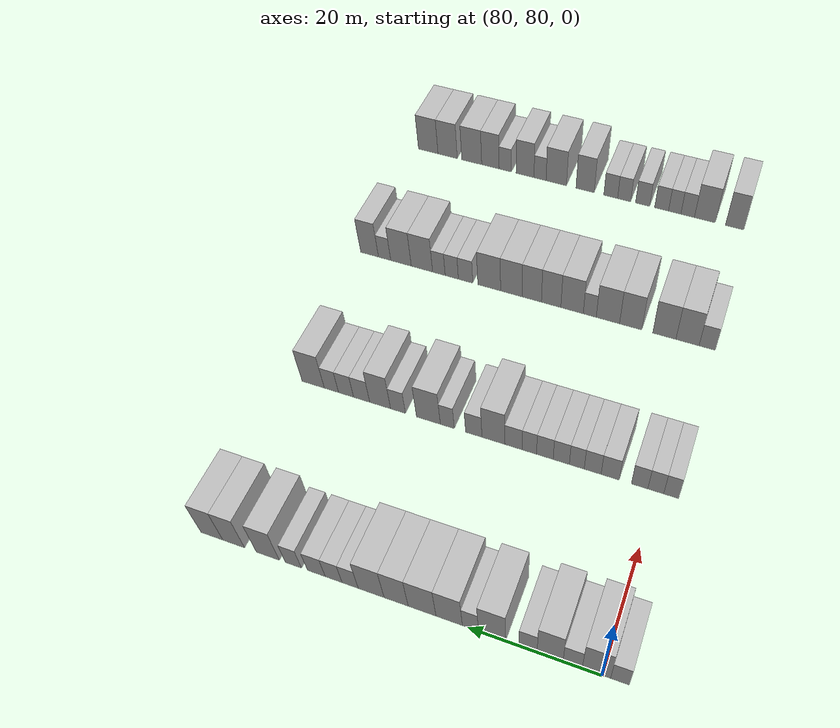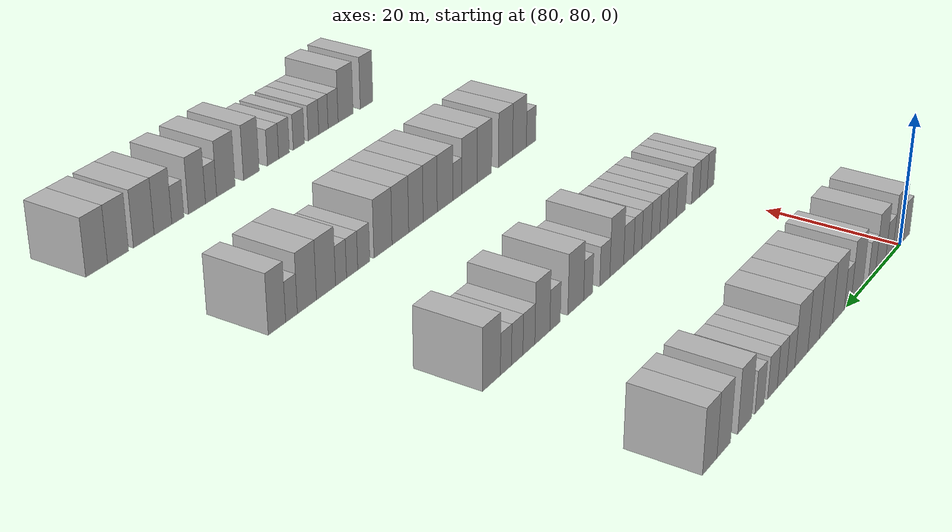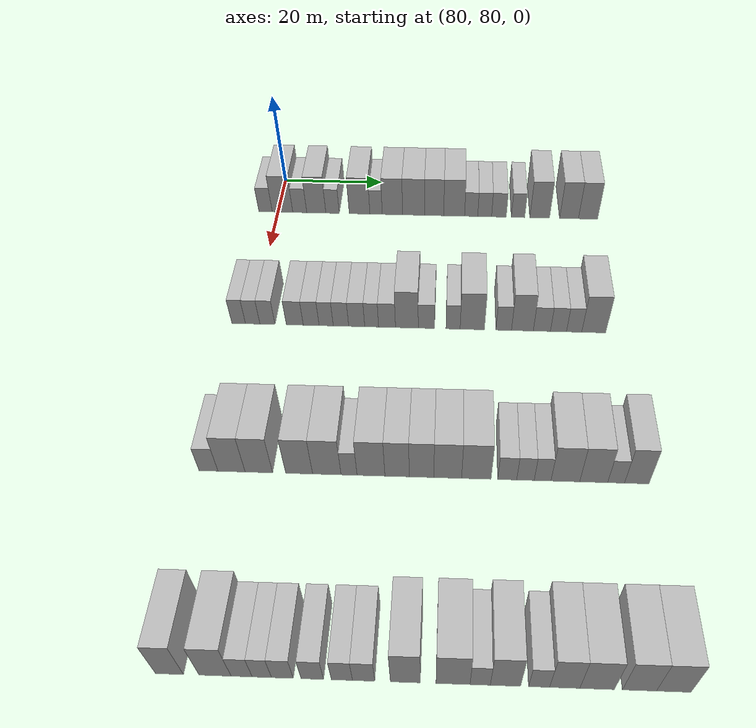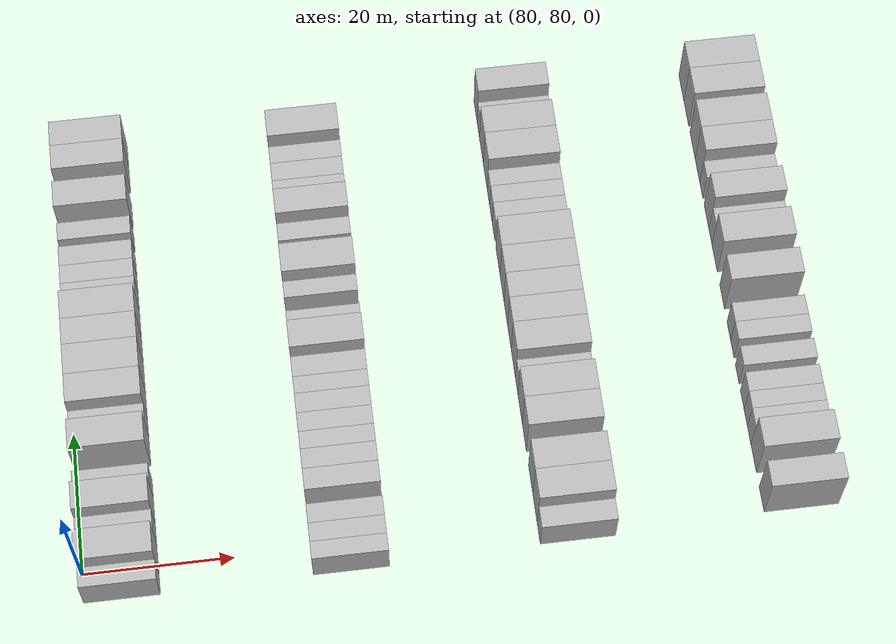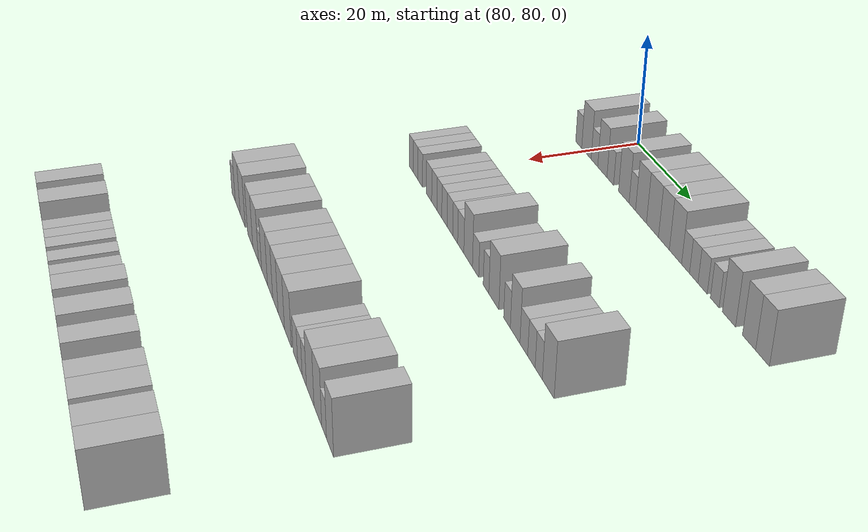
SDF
<sdf version="1.6">
 <world name="default">
  <model name="building_589">
   <static>1</static>
   <pose>85.0000 77.4584 0 0.000000 0.000000 0.000000</pose>
   <link name="link">
    <pose>0 0 3.00 0 0 0</pose>
    <collision name="collision"><geometry><box><size>10.0000 2.6896 6.0000</size></box></geometry></collision>
    <visual name="visual">
     <cast_shadows>0</cast_shadows>
     <geometry><box><size>10.0000 2.6896 6.0000</size></box></geometry>
     <material>
      <script>
       <uri>model://HANNAS_wall/materials/scripts</uri>
       <uri>model://HANNAS_wall/materials/textures</uri>
       <name>vrc/HANNAS_wall</name>
      </script>
     </material>
    </visual>
   </link>
  </model>
  <model name="building_590">
   <static>1</static>
   <pose>85.0000 80.8638 0 0.000000 0.000000 0.000000</pose>
   <link name="link">
    <pose>0 0 4.50 0 0 0</pose>
    <collision name="collision"><geometry><box><size>10.0000 4.1212 9.0000</size></box></geometry></collision>
    <visual name="visual">
     <cast_shadows>0</cast_shadows>
     <geometry><box><size>10.0000 4.1212 9.0000</size></box></geometry>
     <material>
      <script>
       <uri>model://HANNAS_wall/materials/scripts</uri>
       <uri>model://HANNAS_wall/materials/textures</uri>
       <name>vrc/HANNAS_wall</name>
      </script>
     </material>
    </visual>
   </link>
  </model>
  <model name="building_591">
   <static>1</static>
   <pose>85.0000 84.3279 0 0.000000 0.000000 0.000000</pose>
   <link name="link">
    <pose>0 0 3.00 0 0 0</pose>
    <collision name="collision"><geometry><box><size>10.0000 2.8071 6.0000</size></box></geometry></collision>
    <visual name="visual">
     <cast_shadows>0</cast_shadows>
     <geometry><box><size>10.0000 2.8071 6.0000</size></box></geometry>
     <material>
      <script>
       <uri>model://HANNAS_wall/materials/scripts</uri>
       <uri>model://HANNAS_wall/materials/textures</uri>
       <name>vrc/HANNAS_wall</name>
      </script>
     </material>
    </visual>
   </link>
  </model>
  <model name="building_592">
   <static>1</static>
   <pose>85.0000 87.6487 0 0.000000 0.000000 0.000000</pose>
   <link name="link">
    <pose>0 0 4.50 0 0 0</pose>
    <collision name="collision"><geometry><box><size>10.0000 3.8343 9.0000</size></box></geometry></collision>
    <visual name="visual">
     <cast_shadows>0</cast_shadows>
     <geometry><box><size>10.0000 3.8343 9.0000</size></box></geometry>
     <material>
      <script>
       <uri>model://HANNAS_wall/materials/scripts</uri>
       <uri>model://HANNAS_wall/materials/textures</uri>
       <name>vrc/HANNAS_wall</name>
      </script>
     </material>
    </visual>
   </link>
  </model>
  <model name="building_593">
   <static>1</static>
   <pose>85.0000 90.9159 0 0.000000 0.000000 0.000000</pose>
   <link name="link">
    <pose>0 0 3.00 0 0 0</pose>
    <collision name="collision"><geometry><box><size>10.0000 2.7001 6.0000</size></box></geometry></collision>
    <visual name="visual">
     <cast_shadows>0</cast_shadows>
     <geometry><box><size>10.0000 2.7001 6.0000</size></box></geometry>
     <material>
      <script>
       <uri>model://HANNAS_wall/materials/scripts</uri>
       <uri>model://HANNAS_wall/materials/textures</uri>
       <name>vrc/HANNAS_wall</name>
      </script>
     </material>
    </visual>
   </link>
  </model>
  <model name="building_594">
   <static>1</static>
   <pose>85.0000 96.3333 0 0.000000 0.000000 0.000000</pose>
   <link name="link">
    <pose>0 0 4.50 0 0 0</pose>
    <collision name="collision"><geometry><box><size>10.0000 4.1349 9.0000</size></box></geometry></collision>
    <visual name="visual">
     <cast_shadows>0</cast_shadows>
     <geometry><box><size>10.0000 4.1349 9.0000</size></box></geometry>
     <material>
      <script>
       <uri>model://HANNAS_wall/materials/scripts</uri>
       <uri>model://HANNAS_wall/materials/textures</uri>
       <name>vrc/HANNAS_wall</name>
      </script>
     </material>
    </visual>
   </link>
  </model>
  <model name="building_595">
   <static>1</static>
   <pose>85.0000 99.6368 0 0.000000 0.000000 0.000000</pose>
   <link name="link">
    <pose>0 0 3.00 0 0 0</pose>
    <collision name="collision"><geometry><box><size>10.0000 2.4721 6.0000</size></box></geometry></collision>
    <visual name="visual">
     <cast_shadows>0</cast_shadows>
     <geometry><box><size>10.0000 2.4721 6.0000</size></box></geometry>
     <material>
      <script>
       <uri>model://HANNAS_wall/materials/scripts</uri>
       <uri>model://HANNAS_wall/materials/textures</uri>
       <name>vrc/HANNAS_wall</name>
      </script>
     </material>
    </visual>
   </link>
  </model>
  <model name="building_596">
   <static>1</static>
   <pose>85.0000 102.9120 0 0.000000 0.000000 0.000000</pose>
   <link name="link">
    <pose>0 0 4.50 0 0 0</pose>
    <collision name="collision"><geometry><box><size>10.0000 4.0782 9.0000</size></box></geometry></collision>
    <visual name="visual">
     <cast_shadows>0</cast_shadows>
     <geometry><box><size>10.0000 4.0782 9.0000</size></box></geometry>
     <material>
      <script>
       <uri>model://HANNAS_wall/materials/scripts</uri>
       <uri>model://HANNAS_wall/materials/textures</uri>
       <name>vrc/HANNAS_wall</name>
      </script>
     </material>
    </visual>
   </link>
  </model>
  <model name="building_597">
   <static>1</static>
   <pose>85.0000 107.1303 0 0.000000 0.000000 0.000000</pose>
   <link name="link">
    <pose>0 0 4.50 0 0 0</pose>
    <collision name="collision"><geometry><box><size>10.0000 4.3585 9.0000</size></box></geometry></collision>
    <visual name="visual">
     <cast_shadows>0</cast_shadows>
     <geometry><box><size>10.0000 4.3585 9.0000</size></box></geometry>
     <material>
      <script>
       <uri>model://HANNAS_wall/materials/scripts</uri>
       <uri>model://HANNAS_wall/materials/textures</uri>
       <name>vrc/HANNAS_wall</name>
      </script>
     </material>
    </visual>
   </link>
  </model>
  <model name="building_598">
   <static>1</static>
   <pose>85.0000 111.2262 0 0.000000 0.000000 0.000000</pose>
   <link name="link">
    <pose>0 0 4.50 0 0 0</pose>
    <collision name="collision"><geometry><box><size>10.0000 3.8331 9.0000</size></box></geometry></collision>
    <visual name="visual">
     <cast_shadows>0</cast_shadows>
     <geometry><box><size>10.0000 3.8331 9.0000</size></box></geometry>
     <material>
      <script>
       <uri>model://HANNAS_wall/materials/scripts</uri>
       <uri>model://HANNAS_wall/materials/textures</uri>
       <name>vrc/HANNAS_wall</name>
      </script>
     </material>
    </visual>
   </link>
  </model>
  <model name="building_599">
   <static>1</static>
   <pose>85.0000 115.2200 0 0.000000 0.000000 0.000000</pose>
   <link name="link">
    <pose>0 0 4.50 0 0 0</pose>
    <collision name="collision"><geometry><box><size>10.0000 4.1546 9.0000</size></box></geometry></collision>
    <visual name="visual">
     <cast_shadows>0</cast_shadows>
     <geometry><box><size>10.0000 4.1546 9.0000</size></box></geometry>
     <material>
      <script>
       <uri>model://HANNAS_wall/materials/scripts</uri>
       <uri>model://HANNAS_wall/materials/textures</uri>
       <name>vrc/HANNAS_wall</name>
      </script>
     </material>
    </visual>
   </link>
  </model>
  <model name="building_600">
   <static>1</static>
   <pose>85.0000 118.6064 0 0.000000 0.000000 0.000000</pose>
   <link name="link">
    <pose>0 0 3.00 0 0 0</pose>
    <collision name="collision"><geometry><box><size>10.0000 2.6182 6.0000</size></box></geometry></collision>
    <visual name="visual">
     <cast_shadows>0</cast_shadows>
     <geometry><box><size>10.0000 2.6182 6.0000</size></box></geometry>
     <material>
      <script>
       <uri>model://HANNAS_wall/materials/scripts</uri>
       <uri>model://HANNAS_wall/materials/textures</uri>
       <name>vrc/HANNAS_wall</name>
      </script>
     </material>
    </visual>
   </link>
  </model>
  <model name="building_601">
   <static>1</static>
   <pose>85.0000 121.2930 0 0.000000 0.000000 0.000000</pose>
   <link name="link">
    <pose>0 0 3.00 0 0 0</pose>
    <collision name="collision"><geometry><box><size>10.0000 2.7549 6.0000</size></box></geometry></collision>
    <visual name="visual">
     <cast_shadows>0</cast_shadows>
     <geometry><box><size>10.0000 2.7549 6.0000</size></box></geometry>
     <material>
      <script>
       <uri>model://HANNAS_wall/materials/scripts</uri>
       <uri>model://HANNAS_wall/materials/textures</uri>
       <name>vrc/HANNAS_wall</name>
      </script>
     </material>
    </visual>
   </link>
  </model>
  <model name="building_602">
   <static>1</static>
   <pose>85.0000 124.1350 0 0.000000 0.000000 0.000000</pose>
   <link name="link">
    <pose>0 0 3.00 0 0 0</pose>
    <collision name="collision"><geometry><box><size>10.0000 2.9290 6.0000</size></box></geometry></collision>
    <visual name="visual">
     <cast_shadows>0</cast_shadows>
     <geometry><box><size>10.0000 2.9290 6.0000</size></box></geometry>
     <material>
      <script>
       <uri>model://HANNAS_wall/materials/scripts</uri>
       <uri>model://HANNAS_wall/materials/textures</uri>
       <name>vrc/HANNAS_wall</name>
      </script>
     </material>
    </visual>
   </link>
  </model>
  <model name="building_603">
   <static>1</static>
   <pose>85.0000 127.9383 0 0.000000 0.000000 0.000000</pose>
   <link name="link">
    <pose>0 0 3.00 0 0 0</pose>
    <collision name="collision"><geometry><box><size>10.0000 2.6775 6.0000</size></box></geometry></collision>
    <visual name="visual">
     <cast_shadows>0</cast_shadows>
     <geometry><box><size>10.0000 2.6775 6.0000</size></box></geometry>
     <material>
      <script>
       <uri>model://HANNAS_wall/materials/scripts</uri>
       <uri>model://HANNAS_wall/materials/textures</uri>
       <name>vrc/HANNAS_wall</name>
      </script>
     </material>
    </visual>
   </link>
  </model>
  <model name="building_604">
   <static>1</static>
   <pose>85.0000 132.2350 0 0.000000 0.000000 0.000000</pose>
   <link name="link">
    <pose>0 0 4.50 0 0 0</pose>
    <collision name="collision"><geometry><box><size>10.0000 3.9159 9.0000</size></box></geometry></collision>
    <visual name="visual">
     <cast_shadows>0</cast_shadows>
     <geometry><box><size>10.0000 3.9159 9.0000</size></box></geometry>
     <material>
      <script>
       <uri>model://HANNAS_wall/materials/scripts</uri>
       <uri>model://HANNAS_wall/materials/textures</uri>
       <name>vrc/HANNAS_wall</name>
      </script>
     </material>
    </visual>
   </link>
  </model>
  <model name="building_605">
   <static>1</static>
   <pose>85.0000 138.0559 0 0.000000 0.000000 0.000000</pose>
   <link name="link">
    <pose>0 0 4.50 0 0 0</pose>
    <collision name="collision"><geometry><box><size>10.0000 3.7260 9.0000</size></box></geometry></collision>
    <visual name="visual">
     <cast_shadows>0</cast_shadows>
     <geometry><box><size>10.0000 3.7260 9.0000</size></box></geometry>
     <material>
      <script>
       <uri>model://HANNAS_wall/materials/scripts</uri>
       <uri>model://HANNAS_wall/materials/textures</uri>
       <name>vrc/HANNAS_wall</name>
      </script>
     </material>
    </visual>
   </link>
  </model>
  <model name="building_606">
   <static>1</static>
   <pose>85.0000 141.8141 0 0.000000 0.000000 0.000000</pose>
   <link name="link">
    <pose>0 0 4.50 0 0 0</pose>
    <collision name="collision"><geometry><box><size>10.0000 3.7904 9.0000</size></box></geometry></collision>
    <visual name="visual">
     <cast_shadows>0</cast_shadows>
     <geometry><box><size>10.0000 3.7904 9.0000</size></box></geometry>
     <material>
      <script>
       <uri>model://HANNAS_wall/materials/scripts</uri>
       <uri>model://HANNAS_wall/materials/textures</uri>
       <name>vrc/HANNAS_wall</name>
      </script>
     </material>
    </visual>
   </link>
  </model>
  <model name="building_812">
   <static>1</static>
   <pose>115.0000 77.5867 0 0.000000 0.000000 0.000000</pose>
   <link name="link">
    <pose>0 0 3.00 0 0 0</pose>
    <collision name="collision"><geometry><box><size>10.0000 2.4050 6.0000</size></box></geometry></collision>
    <visual name="visual">
     <cast_shadows>0</cast_shadows>
     <geometry><box><size>10.0000 2.4050 6.0000</size></box></geometry>
     <material>
      <script>
       <uri>model://HANNAS_wall/materials/scripts</uri>
       <uri>model://HANNAS_wall/materials/textures</uri>
       <name>vrc/HANNAS_wall</name>
      </script>
     </material>
    </visual>
   </link>
  </model>
  <model name="building_813">
   <static>1</static>
   <pose>115.0000 80.0683 0 0.000000 0.000000 0.000000</pose>
   <link name="link">
    <pose>0 0 3.00 0 0 0</pose>
    <collision name="collision"><geometry><box><size>10.0000 2.5582 6.0000</size></box></geometry></collision>
    <visual name="visual">
     <cast_shadows>0</cast_shadows>
     <geometry><box><size>10.0000 2.5582 6.0000</size></box></geometry>
     <material>
      <script>
       <uri>model://HANNAS_wall/materials/scripts</uri>
       <uri>model://HANNAS_wall/materials/textures</uri>
       <name>vrc/HANNAS_wall</name>
      </script>
     </material>
    </visual>
   </link>
  </model>
  <model name="building_814">
   <static>1</static>
   <pose>115.0000 82.6813 0 0.000000 0.000000 0.000000</pose>
   <link name="link">
    <pose>0 0 3.00 0 0 0</pose>
    <collision name="collision"><geometry><box><size>10.0000 2.6678 6.0000</size></box></geometry></collision>
    <visual name="visual">
     <cast_shadows>0</cast_shadows>
     <geometry><box><size>10.0000 2.6678 6.0000</size></box></geometry>
     <material>
      <script>
       <uri>model://HANNAS_wall/materials/scripts</uri>
       <uri>model://HANNAS_wall/materials/textures</uri>
       <name>vrc/HANNAS_wall</name>
      </script>
     </material>
    </visual>
   </link>
  </model>
  <model name="building_815">
   <static>1</static>
   <pose>115.0000 87.5109 0 0.000000 0.000000 0.000000</pose>
   <link name="link">
    <pose>0 0 3.00 0 0 0</pose>
    <collision name="collision"><geometry><box><size>10.0000 2.9914 6.0000</size></box></geometry></collision>
    <visual name="visual">
     <cast_shadows>0</cast_shadows>
     <geometry><box><size>10.0000 2.9914 6.0000</size></box></geometry>
     <material>
      <script>
       <uri>model://HANNAS_wall/materials/scripts</uri>
       <uri>model://HANNAS_wall/materials/textures</uri>
       <name>vrc/HANNAS_wall</name>
      </script>
     </material>
    </visual>
   </link>
  </model>
  <model name="building_816">
   <static>1</static>
   <pose>115.0000 90.4049 0 0.000000 0.000000 0.000000</pose>
   <link name="link">
    <pose>0 0 3.00 0 0 0</pose>
    <collision name="collision"><geometry><box><size>10.0000 2.7964 6.0000</size></box></geometry></collision>
    <visual name="visual">
     <cast_shadows>0</cast_shadows>
     <geometry><box><size>10.0000 2.7964 6.0000</size></box></geometry>
     <material>
      <script>
       <uri>model://HANNAS_wall/materials/scripts</uri>
       <uri>model://HANNAS_wall/materials/textures</uri>
       <name>vrc/HANNAS_wall</name>
      </script>
     </material>
    </visual>
   </link>
  </model>
  <model name="building_817">
   <static>1</static>
   <pose>115.0000 93.0506 0 0.000000 0.000000 0.000000</pose>
   <link name="link">
    <pose>0 0 3.00 0 0 0</pose>
    <collision name="collision"><geometry><box><size>10.0000 2.4950 6.0000</size></box></geometry></collision>
    <visual name="visual">
     <cast_shadows>0</cast_shadows>
     <geometry><box><size>10.0000 2.4950 6.0000</size></box></geometry>
     <material>
      <script>
       <uri>model://HANNAS_wall/materials/scripts</uri>
       <uri>model://HANNAS_wall/materials/textures</uri>
       <name>vrc/HANNAS_wall</name>
      </script>
     </material>
    </visual>
   </link>
  </model>
  <model name="building_818">
   <static>1</static>
   <pose>115.0000 95.6571 0 0.000000 0.000000 0.000000</pose>
   <link name="link">
    <pose>0 0 3.00 0 0 0</pose>
    <collision name="collision"><geometry><box><size>10.0000 2.7181 6.0000</size></box></geometry></collision>
    <visual name="visual">
     <cast_shadows>0</cast_shadows>
     <geometry><box><size>10.0000 2.7181 6.0000</size></box></geometry>
     <material>
      <script>
       <uri>model://HANNAS_wall/materials/scripts</uri>
       <uri>model://HANNAS_wall/materials/textures</uri>
       <name>vrc/HANNAS_wall</name>
      </script>
     </material>
    </visual>
   </link>
  </model>
  <model name="building_819">
   <static>1</static>
   <pose>115.0000 98.4262 0 0.000000 0.000000 0.000000</pose>
   <link name="link">
    <pose>0 0 3.00 0 0 0</pose>
    <collision name="collision"><geometry><box><size>10.0000 2.8200 6.0000</size></box></geometry></collision>
    <visual name="visual">
     <cast_shadows>0</cast_shadows>
     <geometry><box><size>10.0000 2.8200 6.0000</size></box></geometry>
     <material>
      <script>
       <uri>model://HANNAS_wall/materials/scripts</uri>
       <uri>model://HANNAS_wall/materials/textures</uri>
       <name>vrc/HANNAS_wall</name>
      </script>
     </material>
    </visual>
   </link>
  </model>
  <model name="building_820">
   <static>1</static>
   <pose>115.0000 101.0587 0 0.000000 0.000000 0.000000</pose>
   <link name="link">
    <pose>0 0 3.00 0 0 0</pose>
    <collision name="collision"><geometry><box><size>10.0000 2.4451 6.0000</size></box></geometry></collision>
    <visual name="visual">
     <cast_shadows>0</cast_shadows>
     <geometry><box><size>10.0000 2.4451 6.0000</size></box></geometry>
     <material>
      <script>
       <uri>model://HANNAS_wall/materials/scripts</uri>
       <uri>model://HANNAS_wall/materials/textures</uri>
       <name>vrc/HANNAS_wall</name>
      </script>
     </material>
    </visual>
   </link>
  </model>
  <model name="building_821">
   <static>1</static>
   <pose>115.0000 103.7648 0 0.000000 0.000000 0.000000</pose>
   <link name="link">
    <pose>0 0 3.00 0 0 0</pose>
    <collision name="collision"><geometry><box><size>10.0000 2.9672 6.0000</size></box></geometry></collision>
    <visual name="visual">
     <cast_shadows>0</cast_shadows>
     <geometry><box><size>10.0000 2.9672 6.0000</size></box></geometry>
     <material>
      <script>
       <uri>model://HANNAS_wall/materials/scripts</uri>
       <uri>model://HANNAS_wall/materials/textures</uri>
       <name>vrc/HANNAS_wall</name>
      </script>
     </material>
    </visual>
   </link>
  </model>
  <model name="building_822">
   <static>1</static>
   <pose>115.0000 107.2496 0 0.000000 0.000000 0.000000</pose>
   <link name="link">
    <pose>0 0 4.50 0 0 0</pose>
    <collision name="collision"><geometry><box><size>10.0000 4.0023 9.0000</size></box></geometry></collision>
    <visual name="visual">
     <cast_shadows>0</cast_shadows>
     <geometry><box><size>10.0000 4.0023 9.0000</size></box></geometry>
     <material>
      <script>
       <uri>model://HANNAS_wall/materials/scripts</uri>
       <uri>model://HANNAS_wall/materials/textures</uri>
       <name>vrc/HANNAS_wall</name>
      </script>
     </material>
    </visual>
   </link>
  </model>
  <model name="building_823">
   <static>1</static>
   <pose>115.0000 110.6808 0 0.000000 0.000000 0.000000</pose>
   <link name="link">
    <pose>0 0 3.00 0 0 0</pose>
    <collision name="collision"><geometry><box><size>10.0000 2.8601 6.0000</size></box></geometry></collision>
    <visual name="visual">
     <cast_shadows>0</cast_shadows>
     <geometry><box><size>10.0000 2.8601 6.0000</size></box></geometry>
     <material>
      <script>
       <uri>model://HANNAS_wall/materials/scripts</uri>
       <uri>model://HANNAS_wall/materials/textures</uri>
       <name>vrc/HANNAS_wall</name>
      </script>
     </material>
    </visual>
   </link>
  </model>
  <model name="building_824">
   <static>1</static>
   <pose>115.0000 115.3461 0 0.000000 0.000000 0.000000</pose>
   <link name="link">
    <pose>0 0 3.00 0 0 0</pose>
    <collision name="collision"><geometry><box><size>10.0000 2.4706 6.0000</size></box></geometry></collision>
    <visual name="visual">
     <cast_shadows>0</cast_shadows>
     <geometry><box><size>10.0000 2.4706 6.0000</size></box></geometry>
     <material>
      <script>
       <uri>model://HANNAS_wall/materials/scripts</uri>
       <uri>model://HANNAS_wall/materials/textures</uri>
       <name>vrc/HANNAS_wall</name>
      </script>
     </material>
    </visual>
   </link>
  </model>
  <model name="building_825">
   <static>1</static>
   <pose>115.0000 118.7160 0 0.000000 0.000000 0.000000</pose>
   <link name="link">
    <pose>0 0 4.50 0 0 0</pose>
    <collision name="collision"><geometry><box><size>10.0000 4.2692 9.0000</size></box></geometry></collision>
    <visual name="visual">
     <cast_shadows>0</cast_shadows>
     <geometry><box><size>10.0000 4.2692 9.0000</size></box></geometry>
     <material>
      <script>
       <uri>model://HANNAS_wall/materials/scripts</uri>
       <uri>model://HANNAS_wall/materials/textures</uri>
       <name>vrc/HANNAS_wall</name>
      </script>
     </material>
    </visual>
   </link>
  </model>
  <model name="building_826">
   <static>1</static>
   <pose>115.0000 124.2077 0 0.000000 0.000000 0.000000</pose>
   <link name="link">
    <pose>0 0 3.00 0 0 0</pose>
    <collision name="collision"><geometry><box><size>10.0000 2.7141 6.0000</size></box></geometry></collision>
    <visual name="visual">
     <cast_shadows>0</cast_shadows>
     <geometry><box><size>10.0000 2.7141 6.0000</size></box></geometry>
     <material>
      <script>
       <uri>model://HANNAS_wall/materials/scripts</uri>
       <uri>model://HANNAS_wall/materials/textures</uri>
       <name>vrc/HANNAS_wall</name>
      </script>
     </material>
    </visual>
   </link>
  </model>
  <model name="building_827">
   <static>1</static>
   <pose>115.0000 127.4691 0 0.000000 0.000000 0.000000</pose>
   <link name="link">
    <pose>0 0 4.50 0 0 0</pose>
    <collision name="collision"><geometry><box><size>10.0000 3.8088 9.0000</size></box></geometry></collision>
    <visual name="visual">
     <cast_shadows>0</cast_shadows>
     <geometry><box><size>10.0000 3.8088 9.0000</size></box></geometry>
     <material>
      <script>
       <uri>model://HANNAS_wall/materials/scripts</uri>
       <uri>model://HANNAS_wall/materials/textures</uri>
       <name>vrc/HANNAS_wall</name>
      </script>
     </material>
    </visual>
   </link>
  </model>
  <model name="building_828">
   <static>1</static>
   <pose>115.0000 130.8655 0 0.000000 0.000000 0.000000</pose>
   <link name="link">
    <pose>0 0 3.00 0 0 0</pose>
    <collision name="collision"><geometry><box><size>10.0000 2.9840 6.0000</size></box></geometry></collision>
    <visual name="visual">
     <cast_shadows>0</cast_shadows>
     <geometry><box><size>10.0000 2.9840 6.0000</size></box></geometry>
     <material>
      <script>
       <uri>model://HANNAS_wall/materials/scripts</uri>
       <uri>model://HANNAS_wall/materials/textures</uri>
       <name>vrc/HANNAS_wall</name>
      </script>
     </material>
    </visual>
   </link>
  </model>
  <model name="building_829">
   <static>1</static>
   <pose>115.0000 133.7546 0 0.000000 0.000000 0.000000</pose>
   <link name="link">
    <pose>0 0 3.00 0 0 0</pose>
    <collision name="collision"><geometry><box><size>10.0000 2.7942 6.0000</size></box></geometry></collision>
    <visual name="visual">
     <cast_shadows>0</cast_shadows>
     <geometry><box><size>10.0000 2.7942 6.0000</size></box></geometry>
     <material>
      <script>
       <uri>model://HANNAS_wall/materials/scripts</uri>
       <uri>model://HANNAS_wall/materials/textures</uri>
       <name>vrc/HANNAS_wall</name>
      </script>
     </material>
    </visual>
   </link>
  </model>
  <model name="building_830">
   <static>1</static>
   <pose>115.0000 136.4825 0 0.000000 0.000000 0.000000</pose>
   <link name="link">
    <pose>0 0 3.00 0 0 0</pose>
    <collision name="collision"><geometry><box><size>10.0000 2.6616 6.0000</size></box></geometry></collision>
    <visual name="visual">
     <cast_shadows>0</cast_shadows>
     <geometry><box><size>10.0000 2.6616 6.0000</size></box></geometry>
     <material>
      <script>
       <uri>model://HANNAS_wall/materials/scripts</uri>
       <uri>model://HANNAS_wall/materials/textures</uri>
       <name>vrc/HANNAS_wall</name>
      </script>
     </material>
    </visual>
   </link>
  </model>
  <model name="building_831">
   <static>1</static>
   <pose>115.0000 139.9066 0 0.000000 0.000000 0.000000</pose>
   <link name="link">
    <pose>0 0 4.50 0 0 0</pose>
    <collision name="collision"><geometry><box><size>10.0000 4.1868 9.0000</size></box></geometry></collision>
    <visual name="visual">
     <cast_shadows>0</cast_shadows>
     <geometry><box><size>10.0000 4.1868 9.0000</size></box></geometry>
     <material>
      <script>
       <uri>model://HANNAS_wall/materials/scripts</uri>
       <uri>model://HANNAS_wall/materials/textures</uri>
       <name>vrc/HANNAS_wall</name>
      </script>
     </material>
    </visual>
   </link>
  </model>
  <model name="building_1045">
   <static>1</static>
   <pose>145.0000 78.5099 0 0.000000 0.000000 0.000000</pose>
   <link name="link">
    <pose>0 0 3.00 0 0 0</pose>
    <collision name="collision"><geometry><box><size>10.0000 2.8997 6.0000</size></box></geometry></collision>
    <visual name="visual">
     <cast_shadows>0</cast_shadows>
     <geometry><box><size>10.0000 2.8997 6.0000</size></box></geometry>
     <material>
      <script>
       <uri>model://HANNAS_wall/materials/scripts</uri>
       <uri>model://HANNAS_wall/materials/textures</uri>
       <name>vrc/HANNAS_wall</name>
      </script>
     </material>
    </visual>
   </link>
  </model>
  <model name="building_1046">
   <static>1</static>
   <pose>145.0000 82.0366 0 0.000000 0.000000 0.000000</pose>
   <link name="link">
    <pose>0 0 4.50 0 0 0</pose>
    <collision name="collision"><geometry><box><size>10.0000 4.1538 9.0000</size></box></geometry></collision>
    <visual name="visual">
     <cast_shadows>0</cast_shadows>
     <geometry><box><size>10.0000 4.1538 9.0000</size></box></geometry>
     <material>
      <script>
       <uri>model://HANNAS_wall/materials/scripts</uri>
       <uri>model://HANNAS_wall/materials/textures</uri>
       <name>vrc/HANNAS_wall</name>
      </script>
     </material>
    </visual>
   </link>
  </model>
  <model name="building_1047">
   <static>1</static>
   <pose>145.0000 86.2100 0 0.000000 0.000000 0.000000</pose>
   <link name="link">
    <pose>0 0 4.50 0 0 0</pose>
    <collision name="collision"><geometry><box><size>10.0000 4.1930 9.0000</size></box></geometry></collision>
    <visual name="visual">
     <cast_shadows>0</cast_shadows>
     <geometry><box><size>10.0000 4.1930 9.0000</size></box></geometry>
     <material>
      <script>
       <uri>model://HANNAS_wall/materials/scripts</uri>
       <uri>model://HANNAS_wall/materials/textures</uri>
       <name>vrc/HANNAS_wall</name>
      </script>
     </material>
    </visual>
   </link>
  </model>
  <model name="building_1048">
   <static>1</static>
   <pose>145.0000 92.3547 0 0.000000 0.000000 0.000000</pose>
   <link name="link">
    <pose>0 0 4.50 0 0 0</pose>
    <collision name="collision"><geometry><box><size>10.0000 4.0964 9.0000</size></box></geometry></collision>
    <visual name="visual">
     <cast_shadows>0</cast_shadows>
     <geometry><box><size>10.0000 4.0964 9.0000</size></box></geometry>
     <material>
      <script>
       <uri>model://HANNAS_wall/materials/scripts</uri>
       <uri>model://HANNAS_wall/materials/textures</uri>
       <name>vrc/HANNAS_wall</name>
      </script>
     </material>
    </visual>
   </link>
  </model>
  <model name="building_1049">
   <static>1</static>
   <pose>145.0000 96.5688 0 0.000000 0.000000 0.000000</pose>
   <link name="link">
    <pose>0 0 4.50 0 0 0</pose>
    <collision name="collision"><geometry><box><size>10.0000 4.3318 9.0000</size></box></geometry></collision>
    <visual name="visual">
     <cast_shadows>0</cast_shadows>
     <geometry><box><size>10.0000 4.3318 9.0000</size></box></geometry>
     <material>
      <script>
       <uri>model://HANNAS_wall/materials/scripts</uri>
       <uri>model://HANNAS_wall/materials/textures</uri>
       <name>vrc/HANNAS_wall</name>
      </script>
     </material>
    </visual>
   </link>
  </model>
  <model name="building_1050">
   <static>1</static>
   <pose>145.0000 99.9488 0 0.000000 0.000000 0.000000</pose>
   <link name="link">
    <pose>0 0 3.00 0 0 0</pose>
    <collision name="collision"><geometry><box><size>10.0000 2.4282 6.0000</size></box></geometry></collision>
    <visual name="visual">
     <cast_shadows>0</cast_shadows>
     <geometry><box><size>10.0000 2.4282 6.0000</size></box></geometry>
     <material>
      <script>
       <uri>model://HANNAS_wall/materials/scripts</uri>
       <uri>model://HANNAS_wall/materials/textures</uri>
       <name>vrc/HANNAS_wall</name>
      </script>
     </material>
    </visual>
   </link>
  </model>
  <model name="building_1051">
   <static>1</static>
   <pose>145.0000 103.2771 0 0.000000 0.000000 0.000000</pose>
   <link name="link">
    <pose>0 0 4.50 0 0 0</pose>
    <collision name="collision"><geometry><box><size>10.0000 4.2284 9.0000</size></box></geometry></collision>
    <visual name="visual">
     <cast_shadows>0</cast_shadows>
     <geometry><box><size>10.0000 4.2284 9.0000</size></box></geometry>
     <material>
      <script>
       <uri>model://HANNAS_wall/materials/scripts</uri>
       <uri>model://HANNAS_wall/materials/textures</uri>
       <name>vrc/HANNAS_wall</name>
      </script>
     </material>
    </visual>
   </link>
  </model>
  <model name="building_1052">
   <static>1</static>
   <pose>145.0000 107.2409 0 0.000000 0.000000 0.000000</pose>
   <link name="link">
    <pose>0 0 4.50 0 0 0</pose>
    <collision name="collision"><geometry><box><size>10.0000 3.6991 9.0000</size></box></geometry></collision>
    <visual name="visual">
     <cast_shadows>0</cast_shadows>
     <geometry><box><size>10.0000 3.6991 9.0000</size></box></geometry>
     <material>
      <script>
       <uri>model://HANNAS_wall/materials/scripts</uri>
       <uri>model://HANNAS_wall/materials/textures</uri>
       <name>vrc/HANNAS_wall</name>
      </script>
     </material>
    </visual>
   </link>
  </model>
  <model name="building_1053">
   <static>1</static>
   <pose>145.0000 110.9457 0 0.000000 0.000000 0.000000</pose>
   <link name="link">
    <pose>0 0 4.50 0 0 0</pose>
    <collision name="collision"><geometry><box><size>10.0000 3.7105 9.0000</size></box></geometry></collision>
    <visual name="visual">
     <cast_shadows>0</cast_shadows>
     <geometry><box><size>10.0000 3.7105 9.0000</size></box></geometry>
     <material>
      <script>
       <uri>model://HANNAS_wall/materials/scripts</uri>
       <uri>model://HANNAS_wall/materials/textures</uri>
       <name>vrc/HANNAS_wall</name>
      </script>
     </material>
    </visual>
   </link>
  </model>
  <model name="building_1054">
   <static>1</static>
   <pose>145.0000 114.8886 0 0.000000 0.000000 0.000000</pose>
   <link name="link">
    <pose>0 0 4.50 0 0 0</pose>
    <collision name="collision"><geometry><box><size>10.0000 4.1752 9.0000</size></box></geometry></collision>
    <visual name="visual">
     <cast_shadows>0</cast_shadows>
     <geometry><box><size>10.0000 4.1752 9.0000</size></box></geometry>
     <material>
      <script>
       <uri>model://HANNAS_wall/materials/scripts</uri>
       <uri>model://HANNAS_wall/materials/textures</uri>
       <name>vrc/HANNAS_wall</name>
      </script>
     </material>
    </visual>
   </link>
  </model>
  <model name="building_1055">
   <static>1</static>
   <pose>145.0000 119.2044 0 0.000000 0.000000 0.000000</pose>
   <link name="link">
    <pose>0 0 4.50 0 0 0</pose>
    <collision name="collision"><geometry><box><size>10.0000 4.4565 9.0000</size></box></geometry></collision>
    <visual name="visual">
     <cast_shadows>0</cast_shadows>
     <geometry><box><size>10.0000 4.4565 9.0000</size></box></geometry>
     <material>
      <script>
       <uri>model://HANNAS_wall/materials/scripts</uri>
       <uri>model://HANNAS_wall/materials/textures</uri>
       <name>vrc/HANNAS_wall</name>
      </script>
     </material>
    </visual>
   </link>
  </model>
  <model name="building_1056">
   <static>1</static>
   <pose>145.0000 123.8602 0 0.000000 0.000000 0.000000</pose>
   <link name="link">
    <pose>0 0 3.00 0 0 0</pose>
    <collision name="collision"><geometry><box><size>10.0000 2.8552 6.0000</size></box></geometry></collision>
    <visual name="visual">
     <cast_shadows>0</cast_shadows>
     <geometry><box><size>10.0000 2.8552 6.0000</size></box></geometry>
     <material>
      <script>
       <uri>model://HANNAS_wall/materials/scripts</uri>
       <uri>model://HANNAS_wall/materials/textures</uri>
       <name>vrc/HANNAS_wall</name>
      </script>
     </material>
    </visual>
   </link>
  </model>
  <model name="building_1057">
   <static>1</static>
   <pose>145.0000 126.6047 0 0.000000 0.000000 0.000000</pose>
   <link name="link">
    <pose>0 0 3.00 0 0 0</pose>
    <collision name="collision"><geometry><box><size>10.0000 2.6336 6.0000</size></box></geometry></collision>
    <visual name="visual">
     <cast_shadows>0</cast_shadows>
     <geometry><box><size>10.0000 2.6336 6.0000</size></box></geometry>
     <material>
      <script>
       <uri>model://HANNAS_wall/materials/scripts</uri>
       <uri>model://HANNAS_wall/materials/textures</uri>
       <name>vrc/HANNAS_wall</name>
      </script>
     </material>
    </visual>
   </link>
  </model>
  <model name="building_1058">
   <static>1</static>
   <pose>145.0000 129.1798 0 0.000000 0.000000 0.000000</pose>
   <link name="link">
    <pose>0 0 3.00 0 0 0</pose>
    <collision name="collision"><geometry><box><size>10.0000 2.5166 6.0000</size></box></geometry></collision>
    <visual name="visual">
     <cast_shadows>0</cast_shadows>
     <geometry><box><size>10.0000 2.5166 6.0000</size></box></geometry>
     <material>
      <script>
       <uri>model://HANNAS_wall/materials/scripts</uri>
       <uri>model://HANNAS_wall/materials/textures</uri>
       <name>vrc/HANNAS_wall</name>
      </script>
     </material>
    </visual>
   </link>
  </model>
  <model name="building_1059">
   <static>1</static>
   <pose>145.0000 132.5988 0 0.000000 0.000000 0.000000</pose>
   <link name="link">
    <pose>0 0 4.50 0 0 0</pose>
    <collision name="collision"><geometry><box><size>10.0000 4.3214 9.0000</size></box></geometry></collision>
    <visual name="visual">
     <cast_shadows>0</cast_shadows>
     <geometry><box><size>10.0000 4.3214 9.0000</size></box></geometry>
     <material>
      <script>
       <uri>model://HANNAS_wall/materials/scripts</uri>
       <uri>model://HANNAS_wall/materials/textures</uri>
       <name>vrc/HANNAS_wall</name>
      </script>
     </material>
    </visual>
   </link>
  </model>
  <model name="building_1060">
   <static>1</static>
   <pose>145.0000 136.8575 0 0.000000 0.000000 0.000000</pose>
   <link name="link">
    <pose>0 0 4.50 0 0 0</pose>
    <collision name="collision"><geometry><box><size>10.0000 4.1960 9.0000</size></box></geometry></collision>
    <visual name="visual">
     <cast_shadows>0</cast_shadows>
     <geometry><box><size>10.0000 4.1960 9.0000</size></box></geometry>
     <material>
      <script>
       <uri>model://HANNAS_wall/materials/scripts</uri>
       <uri>model://HANNAS_wall/materials/textures</uri>
       <name>vrc/HANNAS_wall</name>
      </script>
     </material>
    </visual>
   </link>
  </model>
  <model name="building_1061">
   <static>1</static>
   <pose>145.0000 140.2154 0 0.000000 0.000000 0.000000</pose>
   <link name="link">
    <pose>0 0 3.00 0 0 0</pose>
    <collision name="collision"><geometry><box><size>10.0000 2.5198 6.0000</size></box></geometry></collision>
    <visual name="visual">
     <cast_shadows>0</cast_shadows>
     <geometry><box><size>10.0000 2.5198 6.0000</size></box></geometry>
     <material>
      <script>
       <uri>model://HANNAS_wall/materials/scripts</uri>
       <uri>model://HANNAS_wall/materials/textures</uri>
       <name>vrc/HANNAS_wall</name>
      </script>
     </material>
    </visual>
   </link>
  </model>
  <model name="building_1062">
   <static>1</static>
   <pose>145.0000 143.3097 0 0.000000 0.000000 0.000000</pose>
   <link name="link">
    <pose>0 0 4.50 0 0 0</pose>
    <collision name="collision"><geometry><box><size>10.0000 3.6689 9.0000</size></box></geometry></collision>
    <visual name="visual">
     <cast_shadows>0</cast_shadows>
     <geometry><box><size>10.0000 3.6689 9.0000</size></box></geometry>
     <material>
      <script>
       <uri>model://HANNAS_wall/materials/scripts</uri>
       <uri>model://HANNAS_wall/materials/textures</uri>
       <name>vrc/HANNAS_wall</name>
      </script>
     </material>
    </visual>
   </link>
  </model>
  <model name="building_1280">
   <static>1</static>
   <pose>175.0000 79.7722 0 0.000000 0.000000 0.000000</pose>
   <link name="link">
    <pose>0 0 4.50 0 0 0</pose>
    <collision name="collision"><geometry><box><size>10.0000 3.6050 9.0000</size></box></geometry></collision>
    <visual name="visual">
     <cast_shadows>0</cast_shadows>
     <geometry><box><size>10.0000 3.6050 9.0000</size></box></geometry>
     <material>
      <script>
       <uri>model://HANNAS_wall/materials/scripts</uri>
       <uri>model://HANNAS_wall/materials/textures</uri>
       <name>vrc/HANNAS_wall</name>
      </script>
     </material>
    </visual>
   </link>
  </model>
  <model name="building_1281">
   <static>1</static>
   <pose>175.0000 85.6406 0 0.000000 0.000000 0.000000</pose>
   <link name="link">
    <pose>0 0 4.50 0 0 0</pose>
    <collision name="collision"><geometry><box><size>10.0000 4.1317 9.0000</size></box></geometry></collision>
    <visual name="visual">
     <cast_shadows>0</cast_shadows>
     <geometry><box><size>10.0000 4.1317 9.0000</size></box></geometry>
     <material>
      <script>
       <uri>model://HANNAS_wall/materials/scripts</uri>
       <uri>model://HANNAS_wall/materials/textures</uri>
       <name>vrc/HANNAS_wall</name>
      </script>
     </material>
    </visual>
   </link>
  </model>
  <model name="building_1282">
   <static>1</static>
   <pose>175.0000 89.0614 0 0.000000 0.000000 0.000000</pose>
   <link name="link">
    <pose>0 0 3.00 0 0 0</pose>
    <collision name="collision"><geometry><box><size>10.0000 2.7098 6.0000</size></box></geometry></collision>
    <visual name="visual">
     <cast_shadows>0</cast_shadows>
     <geometry><box><size>10.0000 2.7098 6.0000</size></box></geometry>
     <material>
      <script>
       <uri>model://HANNAS_wall/materials/scripts</uri>
       <uri>model://HANNAS_wall/materials/textures</uri>
       <name>vrc/HANNAS_wall</name>
      </script>
     </material>
    </visual>
   </link>
  </model>
  <model name="building_1283">
   <static>1</static>
   <pose>175.0000 91.6544 0 0.000000 0.000000 0.000000</pose>
   <link name="link">
    <pose>0 0 3.00 0 0 0</pose>
    <collision name="collision"><geometry><box><size>10.0000 2.4761 6.0000</size></box></geometry></collision>
    <visual name="visual">
     <cast_shadows>0</cast_shadows>
     <geometry><box><size>10.0000 2.4761 6.0000</size></box></geometry>
     <material>
      <script>
       <uri>model://HANNAS_wall/materials/scripts</uri>
       <uri>model://HANNAS_wall/materials/textures</uri>
       <name>vrc/HANNAS_wall</name>
      </script>
     </material>
    </visual>
   </link>
  </model>
  <model name="building_1284">
   <static>1</static>
   <pose>175.0000 94.2886 0 0.000000 0.000000 0.000000</pose>
   <link name="link">
    <pose>0 0 3.00 0 0 0</pose>
    <collision name="collision"><geometry><box><size>10.0000 2.7924 6.0000</size></box></geometry></collision>
    <visual name="visual">
     <cast_shadows>0</cast_shadows>
     <geometry><box><size>10.0000 2.7924 6.0000</size></box></geometry>
     <material>
      <script>
       <uri>model://HANNAS_wall/materials/scripts</uri>
       <uri>model://HANNAS_wall/materials/textures</uri>
       <name>vrc/HANNAS_wall</name>
      </script>
     </material>
    </visual>
   </link>
  </model>
  <model name="building_1285">
   <static>1</static>
   <pose>175.0000 98.1195 0 0.000000 0.000000 0.000000</pose>
   <link name="link">
    <pose>0 0 3.00 0 0 0</pose>
    <collision name="collision"><geometry><box><size>10.0000 2.8694 6.0000</size></box></geometry></collision>
    <visual name="visual">
     <cast_shadows>0</cast_shadows>
     <geometry><box><size>10.0000 2.8694 6.0000</size></box></geometry>
     <material>
      <script>
       <uri>model://HANNAS_wall/materials/scripts</uri>
       <uri>model://HANNAS_wall/materials/textures</uri>
       <name>vrc/HANNAS_wall</name>
      </script>
     </material>
    </visual>
   </link>
  </model>
  <model name="building_1286">
   <static>1</static>
   <pose>175.0000 101.8977 0 0.000000 0.000000 0.000000</pose>
   <link name="link">
    <pose>0 0 3.00 0 0 0</pose>
    <collision name="collision"><geometry><box><size>10.0000 2.6870 6.0000</size></box></geometry></collision>
    <visual name="visual">
     <cast_shadows>0</cast_shadows>
     <geometry><box><size>10.0000 2.6870 6.0000</size></box></geometry>
     <material>
      <script>
       <uri>model://HANNAS_wall/materials/scripts</uri>
       <uri>model://HANNAS_wall/materials/textures</uri>
       <name>vrc/HANNAS_wall</name>
      </script>
     </material>
    </visual>
   </link>
  </model>
  <model name="building_1287">
   <static>1</static>
   <pose>175.0000 104.6606 0 0.000000 0.000000 0.000000</pose>
   <link name="link">
    <pose>0 0 3.00 0 0 0</pose>
    <collision name="collision"><geometry><box><size>10.0000 2.8388 6.0000</size></box></geometry></collision>
    <visual name="visual">
     <cast_shadows>0</cast_shadows>
     <geometry><box><size>10.0000 2.8388 6.0000</size></box></geometry>
     <material>
      <script>
       <uri>model://HANNAS_wall/materials/scripts</uri>
       <uri>model://HANNAS_wall/materials/textures</uri>
       <name>vrc/HANNAS_wall</name>
      </script>
     </material>
    </visual>
   </link>
  </model>
  <model name="building_1288">
   <static>1</static>
   <pose>175.0000 109.9775 0 0.000000 0.000000 0.000000</pose>
   <link name="link">
    <pose>0 0 4.50 0 0 0</pose>
    <collision name="collision"><geometry><box><size>10.0000 3.7949 9.0000</size></box></geometry></collision>
    <visual name="visual">
     <cast_shadows>0</cast_shadows>
     <geometry><box><size>10.0000 3.7949 9.0000</size></box></geometry>
     <material>
      <script>
       <uri>model://HANNAS_wall/materials/scripts</uri>
       <uri>model://HANNAS_wall/materials/textures</uri>
       <name>vrc/HANNAS_wall</name>
      </script>
     </material>
    </visual>
   </link>
  </model>
  <model name="building_1289">
   <static>1</static>
   <pose>175.0000 116.0311 0 0.000000 0.000000 0.000000</pose>
   <link name="link">
    <pose>0 0 4.50 0 0 0</pose>
    <collision name="collision"><geometry><box><size>10.0000 4.3124 9.0000</size></box></geometry></collision>
    <visual name="visual">
     <cast_shadows>0</cast_shadows>
     <geometry><box><size>10.0000 4.3124 9.0000</size></box></geometry>
     <material>
      <script>
       <uri>model://HANNAS_wall/materials/scripts</uri>
       <uri>model://HANNAS_wall/materials/textures</uri>
       <name>vrc/HANNAS_wall</name>
      </script>
     </material>
    </visual>
   </link>
  </model>
  <model name="building_1290">
   <static>1</static>
   <pose>175.0000 119.4718 0 0.000000 0.000000 0.000000</pose>
   <link name="link">
    <pose>0 0 3.00 0 0 0</pose>
    <collision name="collision"><geometry><box><size>10.0000 2.5691 6.0000</size></box></geometry></collision>
    <visual name="visual">
     <cast_shadows>0</cast_shadows>
     <geometry><box><size>10.0000 2.5691 6.0000</size></box></geometry>
     <material>
      <script>
       <uri>model://HANNAS_wall/materials/scripts</uri>
       <uri>model://HANNAS_wall/materials/textures</uri>
       <name>vrc/HANNAS_wall</name>
      </script>
     </material>
    </visual>
   </link>
  </model>
  <model name="building_1291">
   <static>1</static>
   <pose>175.0000 122.6797 0 0.000000 0.000000 0.000000</pose>
   <link name="link">
    <pose>0 0 4.50 0 0 0</pose>
    <collision name="collision"><geometry><box><size>10.0000 3.8467 9.0000</size></box></geometry></collision>
    <visual name="visual">
     <cast_shadows>0</cast_shadows>
     <geometry><box><size>10.0000 3.8467 9.0000</size></box></geometry>
     <material>
      <script>
       <uri>model://HANNAS_wall/materials/scripts</uri>
       <uri>model://HANNAS_wall/materials/textures</uri>
       <name>vrc/HANNAS_wall</name>
      </script>
     </material>
    </visual>
   </link>
  </model>
  <model name="building_1292">
   <static>1</static>
   <pose>175.0000 126.9317 0 0.000000 0.000000 0.000000</pose>
   <link name="link">
    <pose>0 0 3.00 0 0 0</pose>
    <collision name="collision"><geometry><box><size>10.0000 2.6572 6.0000</size></box></geometry></collision>
    <visual name="visual">
     <cast_shadows>0</cast_shadows>
     <geometry><box><size>10.0000 2.6572 6.0000</size></box></geometry>
     <material>
      <script>
       <uri>model://HANNAS_wall/materials/scripts</uri>
       <uri>model://HANNAS_wall/materials/textures</uri>
       <name>vrc/HANNAS_wall</name>
      </script>
     </material>
    </visual>
   </link>
  </model>
  <model name="building_1293">
   <static>1</static>
   <pose>175.0000 130.1654 0 0.000000 0.000000 0.000000</pose>
   <link name="link">
    <pose>0 0 4.50 0 0 0</pose>
    <collision name="collision"><geometry><box><size>10.0000 3.8101 9.0000</size></box></geometry></collision>
    <visual name="visual">
     <cast_shadows>0</cast_shadows>
     <geometry><box><size>10.0000 3.8101 9.0000</size></box></geometry>
     <material>
      <script>
       <uri>model://HANNAS_wall/materials/scripts</uri>
       <uri>model://HANNAS_wall/materials/textures</uri>
       <name>vrc/HANNAS_wall</name>
      </script>
     </material>
    </visual>
   </link>
  </model>
  <model name="building_1294">
   <static>1</static>
   <pose>175.0000 134.2562 0 0.000000 0.000000 0.000000</pose>
   <link name="link">
    <pose>0 0 4.50 0 0 0</pose>
    <collision name="collision"><geometry><box><size>10.0000 4.3716 9.0000</size></box></geometry></collision>
    <visual name="visual">
     <cast_shadows>0</cast_shadows>
     <geometry><box><size>10.0000 4.3716 9.0000</size></box></geometry>
     <material>
      <script>
       <uri>model://HANNAS_wall/materials/scripts</uri>
       <uri>model://HANNAS_wall/materials/textures</uri>
       <name>vrc/HANNAS_wall</name>
      </script>
     </material>
    </visual>
   </link>
  </model>
  <model name="building_1295">
   <static>1</static>
   <pose>175.0000 139.5804 0 0.000000 0.000000 0.000000</pose>
   <link name="link">
    <pose>0 0 4.50 0 0 0</pose>
    <collision name="collision"><geometry><box><size>10.0000 4.2768 9.0000</size></box></geometry></collision>
    <visual name="visual">
     <cast_shadows>0</cast_shadows>
     <geometry><box><size>10.0000 4.2768 9.0000</size></box></geometry>
     <material>
      <script>
       <uri>model://HANNAS_wall/materials/scripts</uri>
       <uri>model://HANNAS_wall/materials/textures</uri>
       <name>vrc/HANNAS_wall</name>
      </script>
     </material>
    </visual>
   </link>
  </model>
  <model name="building_1296">
   <static>1</static>
   <pose>175.0000 143.8960 0 0.000000 0.000000 0.000000</pose>
   <link name="link">
    <pose>0 0 4.50 0 0 0</pose>
    <collision name="collision"><geometry><box><size>10.0000 4.3543 9.0000</size></box></geometry></collision>
    <visual name="visual">
     <cast_shadows>0</cast_shadows>
     <geometry><box><size>10.0000 4.3543 9.0000</size></box></geometry>
     <material>
      <script>
       <uri>model://HANNAS_wall/materials/scripts</uri>
       <uri>model://HANNAS_wall/materials/textures</uri>
       <name>vrc/HANNAS_wall</name>
      </script>
     </material>
    </visual>
   </link>
  </model>
 </world>
</sdf>
